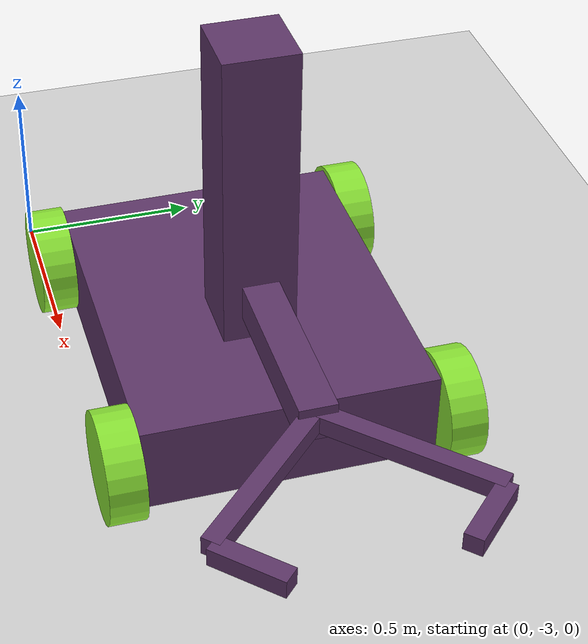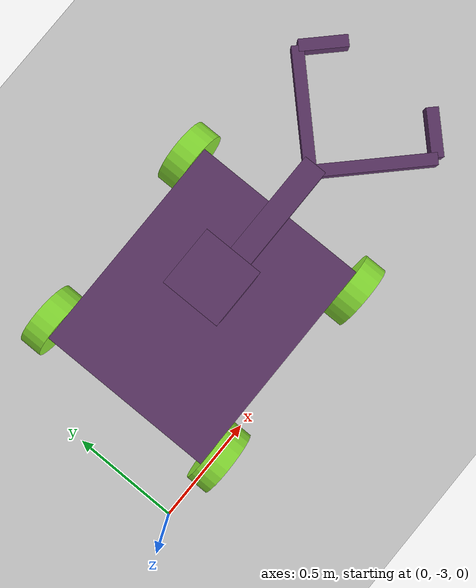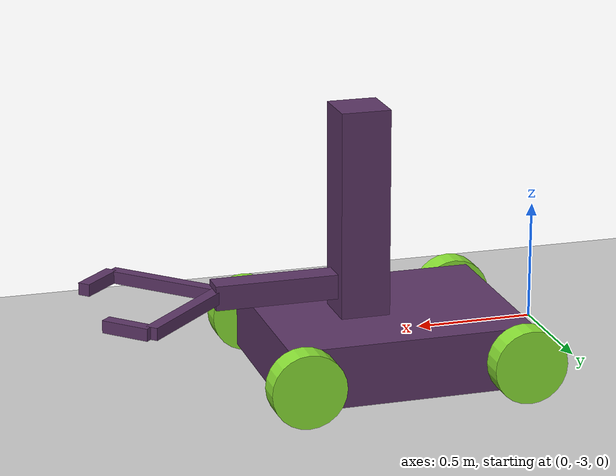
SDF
<sdf version="1.7">
 <world name="default">
  <model name="ground_plane">
   <static>1</static>
   <link name="ground_link">
    <collision name="collision">
     <geometry><plane><normal>0 0 1</normal><size>100 100</size></plane></geometry>
     <surface><friction><ode><mu>100</mu><mu2>50</mu2></ode></friction></surface>
    </collision>
    <visual name="visual">
     <cast_shadows>0</cast_shadows>
     <geometry><plane><normal>0 0 1</normal><size>100 100</size></plane></geometry>
     <material>
      <script><uri>file://media/materials/scripts/gazebo.material</uri><name>Gazebo/Grey</name></script>
     </material>
    </visual>
   </link>
  </model>
  <model name="GripperBot">
   <link name="link_1">
    <inertial>
     <mass>20</mass>
     <inertia>
      <ixx>0.885417</ixx>
      <ixy>0</ixy>
      <ixz>0</ixz>
      <iyy>0.885417</iyy>
      <iyz>0</iyz>
      <izz>1.66667</izz>
     </inertia>
    </inertial>
    <pose>0 -0 0.155 0 -0 0</pose>
    <visual name="visual">
     <geometry><box><size>1 0.8 0.25</size></box></geometry>
     <material>
      <lighting>1</lighting>
      <script><uri>file://media/materials/scripts/gazebo.material</uri><name>Gazebo/Grey</name></script>
      <shader type="pixel"><normal_map>__default__</normal_map></shader>
      <ambient>0.8 0 0 1</ambient>
      <diffuse>0.361 0.208 0.4 1</diffuse>
      <specular>0.961 0.475 0 1</specular>
      <emissive>0 0 0 1</emissive>
     </material>
    </visual>
    <collision name="collision">
     <geometry><box><size>1 0.8 0.25</size></box></geometry>
     <surface>
      <friction>
       <ode><mu>1</mu><mu2>1</mu2><fdir1>0 0 0</fdir1><slip1>0</slip1><slip2>0</slip2></ode>
       <torsional>
        <coefficient>1</coefficient>
        <patch_radius>0</patch_radius>
        <surface_radius>0</surface_radius>
        <use_patch_radius>1</use_patch_radius>
        <ode><slip>0</slip></ode>
       </torsional>
      </friction>
      <bounce><restitution_coefficient>0</restitution_coefficient><threshold>1e+06</threshold></bounce>
      <contact>
       <collide_without_contact>0</collide_without_contact>
       <collide_without_contact_bitmask>1</collide_without_contact_bitmask>
       <collide_bitmask>1</collide_bitmask>
       <ode>
        <soft_cfm>0</soft_cfm>
        <soft_erp>0.2</soft_erp>
        <kp>1e+13</kp>
        <kd>1</kd>
        <max_vel>0.01</max_vel>
        <min_depth>0</min_depth>
       </ode>
       <bullet>
        <split_impulse>1</split_impulse>
        <split_impulse_penetration_threshold>-0.01</split_impulse_penetration_threshold>
        <soft_cfm>0</soft_cfm>
        <soft_erp>0.2</soft_erp>
        <kp>1e+13</kp>
        <kd>1</kd>
       </bullet>
      </contact>
     </surface>
    </collision>
   </link>
   <link name="link_2_clone_1">
    <inertial>
     <mass>0.1</mass>
     <inertia><ixx>0.145833</ixx><ixy>0</ixy><ixz>0</ixz><iyy>0.145833</iyy><iyz>0</iyz><izz>0.125</izz></inertia>
    </inertial>
    <pose>0.45 -0.45 0.15 1.5707 -0 0</pose>
    <visual name="visual">
     <geometry><cylinder><radius>0.15</radius><length>0.1</length></cylinder></geometry>
     <material>
      <lighting>1</lighting>
      <script><uri>file://media/materials/scripts/gazebo.material</uri><name>Gazebo/Grey</name></script>
      <shader type="pixel"><normal_map>__default__</normal_map></shader>
      <ambient>0.541 0.886 0.204 1</ambient>
      <diffuse>0.7 0.7 0.7 1</diffuse>
      <specular>0.01 0.01 0.01 1</specular>
      <emissive>0 0 0 1</emissive>
     </material>
    </visual>
    <collision name="collision">
     <geometry><cylinder><radius>0.15</radius><length>0.1</length></cylinder></geometry>
     <surface>
      <friction>
       <ode><mu>1</mu><mu2>1</mu2><fdir1>0 0 0</fdir1><slip1>0</slip1><slip2>0</slip2></ode>
       <torsional>
        <coefficient>1</coefficient>
        <patch_radius>0</patch_radius>
        <surface_radius>0</surface_radius>
        <use_patch_radius>1</use_patch_radius>
        <ode><slip>0</slip></ode>
       </torsional>
      </friction>
      <bounce><restitution_coefficient>0</restitution_coefficient><threshold>1e+06</threshold></bounce>
      <contact>
       <collide_without_contact>0</collide_without_contact>
       <collide_without_contact_bitmask>1</collide_without_contact_bitmask>
       <collide_bitmask>1</collide_bitmask>
       <ode>
        <soft_cfm>0</soft_cfm>
        <soft_erp>0.2</soft_erp>
        <kp>1e+13</kp>
        <kd>1</kd>
        <max_vel>0.01</max_vel>
        <min_depth>0</min_depth>
       </ode>
       <bullet>
        <split_impulse>1</split_impulse>
        <split_impulse_penetration_threshold>-0.01</split_impulse_penetration_threshold>
        <soft_cfm>0</soft_cfm>
        <soft_erp>0.2</soft_erp>
        <kp>1e+13</kp>
        <kd>1</kd>
       </bullet>
      </contact>
     </surface>
    </collision>
   </link>
   <link name="link_2_clone_1_clone">
    <inertial>
     <mass>0.1</mass>
     <inertia><ixx>0.145833</ixx><ixy>0</ixy><ixz>0</ixz><iyy>0.145833</iyy><iyz>0</iyz><izz>0.125</izz></inertia>
    </inertial>
    <pose>0.45 0.45 0.15 1.5707 -0 0</pose>
    <visual name="visual">
     <geometry><cylinder><radius>0.15</radius><length>0.1</length></cylinder></geometry>
     <material>
      <lighting>1</lighting>
      <script><uri>file://media/materials/scripts/gazebo.material</uri><name>Gazebo/Grey</name></script>
      <shader type="pixel"><normal_map>__default__</normal_map></shader>
      <ambient>0.541 0.886 0.204 1</ambient>
      <diffuse>0.7 0.7 0.7 1</diffuse>
      <specular>0.01 0.01 0.01 1</specular>
      <emissive>0 0 0 1</emissive>
     </material>
    </visual>
    <collision name="collision">
     <geometry><cylinder><radius>0.15</radius><length>0.1</length></cylinder></geometry>
     <surface>
      <friction>
       <ode><mu>1</mu><mu2>1</mu2><fdir1>0 0 0</fdir1><slip1>0</slip1><slip2>0</slip2></ode>
       <torsional>
        <coefficient>1</coefficient>
        <patch_radius>0</patch_radius>
        <surface_radius>0</surface_radius>
        <use_patch_radius>1</use_patch_radius>
        <ode><slip>0</slip></ode>
       </torsional>
      </friction>
      <bounce><restitution_coefficient>0</restitution_coefficient><threshold>1e+06</threshold></bounce>
      <contact>
       <collide_without_contact>0</collide_without_contact>
       <collide_without_contact_bitmask>1</collide_without_contact_bitmask>
       <collide_bitmask>1</collide_bitmask>
       <ode>
        <soft_cfm>0</soft_cfm>
        <soft_erp>0.2</soft_erp>
        <kp>1e+13</kp>
        <kd>1</kd>
        <max_vel>0.01</max_vel>
        <min_depth>0</min_depth>
       </ode>
       <bullet>
        <split_impulse>1</split_impulse>
        <split_impulse_penetration_threshold>-0.01</split_impulse_penetration_threshold>
        <soft_cfm>0</soft_cfm>
        <soft_erp>0.2</soft_erp>
        <kp>1e+13</kp>
        <kd>1</kd>
       </bullet>
      </contact>
     </surface>
    </collision>
   </link>
   <link name="link_2_clone_1_clone_0">
    <inertial>
     <mass>0.1</mass>
     <inertia><ixx>0.145833</ixx><ixy>0</ixy><ixz>0</ixz><iyy>0.145833</iyy><iyz>0</iyz><izz>0.125</izz></inertia>
    </inertial>
    <pose>-0.45 -0.45 0.15 1.5707 -0 0</pose>
    <visual name="visual">
     <geometry><cylinder><radius>0.15</radius><length>0.1</length></cylinder></geometry>
     <material>
      <lighting>1</lighting>
      <script><uri>file://media/materials/scripts/gazebo.material</uri><name>Gazebo/Grey</name></script>
      <shader type="pixel"><normal_map>__default__</normal_map></shader>
      <ambient>0.541 0.886 0.204 1</ambient>
      <diffuse>0.7 0.7 0.7 1</diffuse>
      <specular>0.01 0.01 0.01 1</specular>
      <emissive>0 0 0 1</emissive>
     </material>
    </visual>
    <collision name="collision">
     <geometry><cylinder><radius>0.15</radius><length>0.1</length></cylinder></geometry>
     <surface>
      <friction>
       <ode><mu>1</mu><mu2>1</mu2><fdir1>0 0 0</fdir1><slip1>0</slip1><slip2>0</slip2></ode>
       <torsional>
        <coefficient>1</coefficient>
        <patch_radius>0</patch_radius>
        <surface_radius>0</surface_radius>
        <use_patch_radius>1</use_patch_radius>
        <ode><slip>0</slip></ode>
       </torsional>
      </friction>
      <bounce><restitution_coefficient>0</restitution_coefficient><threshold>1e+06</threshold></bounce>
      <contact>
       <collide_without_contact>0</collide_without_contact>
       <collide_without_contact_bitmask>1</collide_without_contact_bitmask>
       <collide_bitmask>1</collide_bitmask>
       <ode>
        <soft_cfm>0</soft_cfm>
        <soft_erp>0.2</soft_erp>
        <kp>1e+13</kp>
        <kd>1</kd>
        <max_vel>0.01</max_vel>
        <min_depth>0</min_depth>
       </ode>
       <bullet>
        <split_impulse>1</split_impulse>
        <split_impulse_penetration_threshold>-0.01</split_impulse_penetration_threshold>
        <soft_cfm>0</soft_cfm>
        <soft_erp>0.2</soft_erp>
        <kp>1e+13</kp>
        <kd>1</kd>
       </bullet>
      </contact>
     </surface>
    </collision>
   </link>
   <link name="link_2_clone_1_clone_clone">
    <inertial>
     <mass>0.1</mass>
     <inertia><ixx>0.145833</ixx><ixy>0</ixy><ixz>0</ixz><iyy>0.145833</iyy><iyz>0</iyz><izz>0.125</izz></inertia>
    </inertial>
    <pose>-0.45 0.45 0.15 1.5707 -0 0</pose>
    <visual name="visual">
     <geometry><cylinder><radius>0.15</radius><length>0.1</length></cylinder></geometry>
     <material>
      <lighting>1</lighting>
      <script><uri>file://media/materials/scripts/gazebo.material</uri><name>Gazebo/Grey</name></script>
      <shader type="pixel"><normal_map>__default__</normal_map></shader>
      <ambient>0.541 0.886 0.204 1</ambient>
      <diffuse>0.7 0.7 0.7 1</diffuse>
      <specular>0.01 0.01 0.01 1</specular>
      <emissive>0 0 0 1</emissive>
     </material>
    </visual>
    <collision name="collision">
     <geometry><cylinder><radius>0.15</radius><length>0.1</length></cylinder></geometry>
     <surface>
      <friction>
       <ode><mu>1</mu><mu2>1</mu2><fdir1>0 0 0</fdir1><slip1>0</slip1><slip2>0</slip2></ode>
       <torsional>
        <coefficient>1</coefficient>
        <patch_radius>0</patch_radius>
        <surface_radius>0</surface_radius>
        <use_patch_radius>1</use_patch_radius>
        <ode><slip>0</slip></ode>
       </torsional>
      </friction>
      <bounce><restitution_coefficient>0</restitution_coefficient><threshold>1e+06</threshold></bounce>
      <contact>
       <collide_without_contact>0</collide_without_contact>
       <collide_without_contact_bitmask>1</collide_without_contact_bitmask>
       <collide_bitmask>1</collide_bitmask>
       <ode>
        <soft_cfm>0</soft_cfm>
        <soft_erp>0.2</soft_erp>
        <kp>1e+13</kp>
        <kd>1</kd>
        <max_vel>0.01</max_vel>
        <min_depth>0</min_depth>
       </ode>
       <bullet>
        <split_impulse>1</split_impulse>
        <split_impulse_penetration_threshold>-0.01</split_impulse_penetration_threshold>
        <soft_cfm>0</soft_cfm>
        <soft_erp>0.2</soft_erp>
        <kp>1e+13</kp>
        <kd>1</kd>
       </bullet>
      </contact>
     </surface>
    </collision>
   </link>
   <link name="link_3">
    <inertial>
     <mass>0.1</mass>
     <inertia>
      <ixx>0.166667</ixx>
      <ixy>0</ixy>
      <ixz>0</ixz>
      <iyy>0.166667</iyy>
      <iyz>0</iyz>
      <izz>0.166667</izz>
     </inertia>
    </inertial>
    <pose>0.102445 -0.000668 0.620289 0 -0 0</pose>
    <visual name="visual">
     <geometry><box><size>0.2 0.2 1</size></box></geometry>
     <material>
      <lighting>1</lighting>
      <script><uri>file://media/materials/scripts/gazebo.material</uri><name>Gazebo/Grey</name></script>
      <shader type="pixel"><normal_map>__default__</normal_map></shader>
      <ambient>0.361 0.208 0.4 1</ambient>
      <diffuse>0.7 0.7 0.7 1</diffuse>
      <specular>0.01 0.01 0.01 1</specular>
      <emissive>0 0 0 1</emissive>
     </material>
    </visual>
    <collision name="collision">
     <geometry><box><size>0.2 0.2 1</size></box></geometry>
     <surface>
      <friction>
       <ode><mu>1</mu><mu2>1</mu2><fdir1>0 0 0</fdir1><slip1>0</slip1><slip2>0</slip2></ode>
       <torsional>
        <coefficient>1</coefficient>
        <patch_radius>0</patch_radius>
        <surface_radius>0</surface_radius>
        <use_patch_radius>1</use_patch_radius>
        <ode><slip>0</slip></ode>
       </torsional>
      </friction>
      <bounce><restitution_coefficient>0</restitution_coefficient><threshold>1e+06</threshold></bounce>
      <contact>
       <collide_without_contact>0</collide_without_contact>
       <collide_without_contact_bitmask>1</collide_without_contact_bitmask>
       <collide_bitmask>1</collide_bitmask>
       <ode>
        <soft_cfm>0</soft_cfm>
        <soft_erp>0.2</soft_erp>
        <kp>1e+13</kp>
        <kd>1</kd>
        <max_vel>0.01</max_vel>
        <min_depth>0</min_depth>
       </ode>
       <bullet>
        <split_impulse>1</split_impulse>
        <split_impulse_penetration_threshold>-0.01</split_impulse_penetration_threshold>
        <soft_cfm>0</soft_cfm>
        <soft_erp>0.2</soft_erp>
        <kp>1e+13</kp>
        <kd>1</kd>
       </bullet>
      </contact>
     </surface>
    </collision>
   </link>
   <link name="link_4">
    <inertial>
     <mass>0.1</mass>
     <inertia>
      <ixx>0.166667</ixx>
      <ixy>0</ixy>
      <ixz>0</ixz>
      <iyy>0.166667</iyy>
      <iyz>0</iyz>
      <izz>0.166667</izz>
     </inertia>
    </inertial>
    <pose>0.45 0 0.4 0 -0 0</pose>
    <visual name="visual">
     <geometry><box><size>0.5 0.1 0.1</size></box></geometry>
     <material>
      <lighting>1</lighting>
      <script><uri>file://media/materials/scripts/gazebo.material</uri><name>Gazebo/Grey</name></script>
      <shader type="pixel"><normal_map>__default__</normal_map></shader>
      <ambient>0.361 0.208 0.4 1</ambient>
      <diffuse>0.7 0.7 0.7 1</diffuse>
      <specular>0.01 0.01 0.01 1</specular>
      <emissive>0 0 0 1</emissive>
     </material>
    </visual>
    <collision name="collision">
     <geometry><box><size>0.5 0.1 0.1</size></box></geometry>
     <surface>
      <friction>
       <ode><mu>1</mu><mu2>1</mu2><fdir1>0 0 0</fdir1><slip1>0</slip1><slip2>0</slip2></ode>
       <torsional>
        <coefficient>1</coefficient>
        <patch_radius>0</patch_radius>
        <surface_radius>0</surface_radius>
        <use_patch_radius>1</use_patch_radius>
        <ode><slip>0</slip></ode>
       </torsional>
      </friction>
      <bounce><restitution_coefficient>0</restitution_coefficient><threshold>1e+06</threshold></bounce>
      <contact>
       <collide_without_contact>0</collide_without_contact>
       <collide_without_contact_bitmask>1</collide_without_contact_bitmask>
       <collide_bitmask>1</collide_bitmask>
       <ode>
        <soft_cfm>0</soft_cfm>
        <soft_erp>0.2</soft_erp>
        <kp>1e+13</kp>
        <kd>1</kd>
        <max_vel>0.01</max_vel>
        <min_depth>0</min_depth>
       </ode>
       <bullet>
        <split_impulse>1</split_impulse>
        <split_impulse_penetration_threshold>-0.01</split_impulse_penetration_threshold>
        <soft_cfm>0</soft_cfm>
        <soft_erp>0.2</soft_erp>
        <kp>1e+13</kp>
        <kd>1</kd>
       </bullet>
      </contact>
     </surface>
    </collision>
   </link>
   <link name="link_4_clone">
    <inertial>
     <mass>0.1</mass>
     <inertia>
      <ixx>0.166667</ixx>
      <ixy>0</ixy>
      <ixz>0</ixz>
      <iyy>0.166667</iyy>
      <iyz>0</iyz>
      <izz>0.166667</izz>
     </inertia>
    </inertial>
    <pose>0.85 -0.17677 0.4 0 0 -0.78539</pose>
    <visual name="visual">
     <geometry><box><size>0.5 0.05 0.05</size></box></geometry>
     <material>
      <lighting>1</lighting>
      <script><uri>file://media/materials/scripts/gazebo.material</uri><name>Gazebo/Grey</name></script>
      <shader type="pixel"><normal_map>__default__</normal_map></shader>
      <ambient>0.361 0.208 0.4 1</ambient>
      <diffuse>0.7 0.7 0.7 1</diffuse>
      <specular>0.01 0.01 0.01 1</specular>
      <emissive>0 0 0 1</emissive>
     </material>
    </visual>
    <collision name="collision">
     <geometry><box><size>0.5 0.05 0.05</size></box></geometry>
     <surface>
      <friction>
       <ode><mu>1</mu><mu2>1</mu2><fdir1>0 0 0</fdir1><slip1>0</slip1><slip2>0</slip2></ode>
       <torsional>
        <coefficient>1</coefficient>
        <patch_radius>0</patch_radius>
        <surface_radius>0</surface_radius>
        <use_patch_radius>1</use_patch_radius>
        <ode><slip>0</slip></ode>
       </torsional>
      </friction>
      <bounce><restitution_coefficient>0</restitution_coefficient><threshold>1e+06</threshold></bounce>
      <contact>
       <collide_without_contact>0</collide_without_contact>
       <collide_without_contact_bitmask>1</collide_without_contact_bitmask>
       <collide_bitmask>1</collide_bitmask>
       <ode>
        <soft_cfm>0</soft_cfm>
        <soft_erp>0.2</soft_erp>
        <kp>1e+13</kp>
        <kd>1</kd>
        <max_vel>0.01</max_vel>
        <min_depth>0</min_depth>
       </ode>
       <bullet>
        <split_impulse>1</split_impulse>
        <split_impulse_penetration_threshold>-0.01</split_impulse_penetration_threshold>
        <soft_cfm>0</soft_cfm>
        <soft_erp>0.2</soft_erp>
        <kp>1e+13</kp>
        <kd>1</kd>
       </bullet>
      </contact>
     </surface>
    </collision>
   </link>
   <link name="link_4_clone_clone">
    <inertial>
     <mass>0.1</mass>
     <inertia>
      <ixx>0.166667</ixx>
      <ixy>0</ixy>
      <ixz>0</ixz>
      <iyy>0.166667</iyy>
      <iyz>0</iyz>
      <izz>0.166667</izz>
     </inertia>
    </inertial>
    <pose>0.85 0.17677 0.4 0 -0 0.78539</pose>
    <visual name="visual">
     <geometry><box><size>0.5 0.05 0.05</size></box></geometry>
     <material>
      <lighting>1</lighting>
      <script><uri>file://media/materials/scripts/gazebo.material</uri><name>Gazebo/Grey</name></script>
      <shader type="pixel"><normal_map>__default__</normal_map></shader>
      <ambient>0.361 0.208 0.4 1</ambient>
      <diffuse>0.7 0.7 0.7 1</diffuse>
      <specular>0.01 0.01 0.01 1</specular>
      <emissive>0 0 0 1</emissive>
     </material>
    </visual>
    <collision name="collision">
     <geometry><box><size>0.5 0.05 0.05</size></box></geometry>
     <surface>
      <friction>
       <ode><mu>1</mu><mu2>1</mu2><fdir1>0 0 0</fdir1><slip1>0</slip1><slip2>0</slip2></ode>
       <torsional>
        <coefficient>1</coefficient>
        <patch_radius>0</patch_radius>
        <surface_radius>0</surface_radius>
        <use_patch_radius>1</use_patch_radius>
        <ode><slip>0</slip></ode>
       </torsional>
      </friction>
      <bounce><restitution_coefficient>0</restitution_coefficient><threshold>1e+06</threshold></bounce>
      <contact>
       <collide_without_contact>0</collide_without_contact>
       <collide_without_contact_bitmask>1</collide_without_contact_bitmask>
       <collide_bitmask>1</collide_bitmask>
       <ode>
        <soft_cfm>0</soft_cfm>
        <soft_erp>0.2</soft_erp>
        <kp>1e+13</kp>
        <kd>1</kd>
        <max_vel>0.01</max_vel>
        <min_depth>0</min_depth>
       </ode>
       <bullet>
        <split_impulse>1</split_impulse>
        <split_impulse_penetration_threshold>-0.01</split_impulse_penetration_threshold>
        <soft_cfm>0</soft_cfm>
        <soft_erp>0.2</soft_erp>
        <kp>1e+13</kp>
        <kd>1</kd>
       </bullet>
      </contact>
     </surface>
    </collision>
   </link>
   <link name="link_4_clone_clone_0">
    <inertial>
     <mass>0.1</mass>
     <inertia>
      <ixx>0.166667</ixx>
      <ixy>0</ixy>
      <ixz>0</ixz>
      <iyy>0.166667</iyy>
      <iyz>0</iyz>
      <izz>0.166667</izz>
     </inertia>
    </inertial>
    <pose>1.1 0.28 0.4 0 0 -0.78539</pose>
    <visual name="visual">
     <geometry><box><size>0.2 0.05 0.05</size></box></geometry>
     <material>
      <lighting>1</lighting>
      <script><uri>file://media/materials/scripts/gazebo.material</uri><name>Gazebo/Grey</name></script>
      <shader type="pixel"><normal_map>__default__</normal_map></shader>
      <ambient>0.361 0.208 0.4 1</ambient>
      <diffuse>0.7 0.7 0.7 1</diffuse>
      <specular>0.01 0.01 0.01 1</specular>
      <emissive>0 0 0 1</emissive>
     </material>
    </visual>
    <collision name="collision">
     <geometry><box><size>0.2 0.05 0.05</size></box></geometry>
     <surface>
      <friction>
       <ode><mu>1</mu><mu2>1</mu2><fdir1>0 0 0</fdir1><slip1>0</slip1><slip2>0</slip2></ode>
       <torsional>
        <coefficient>1</coefficient>
        <patch_radius>0</patch_radius>
        <surface_radius>0</surface_radius>
        <use_patch_radius>1</use_patch_radius>
        <ode><slip>0</slip></ode>
       </torsional>
      </friction>
      <bounce><restitution_coefficient>0</restitution_coefficient><threshold>1e+06</threshold></bounce>
      <contact>
       <collide_without_contact>0</collide_without_contact>
       <collide_without_contact_bitmask>1</collide_without_contact_bitmask>
       <collide_bitmask>1</collide_bitmask>
       <ode>
        <soft_cfm>0</soft_cfm>
        <soft_erp>0.2</soft_erp>
        <kp>1e+13</kp>
        <kd>1</kd>
        <max_vel>0.01</max_vel>
        <min_depth>0</min_depth>
       </ode>
       <bullet>
        <split_impulse>1</split_impulse>
        <split_impulse_penetration_threshold>-0.01</split_impulse_penetration_threshold>
        <soft_cfm>0</soft_cfm>
        <soft_erp>0.2</soft_erp>
        <kp>1e+13</kp>
        <kd>1</kd>
       </bullet>
      </contact>
     </surface>
    </collision>
   </link>
   <link name="link_4_clone_clone_clone">
    <inertial>
     <mass>0.1</mass>
     <inertia>
      <ixx>0.166667</ixx>
      <ixy>0</ixy>
      <ixz>0</ixz>
      <iyy>0.166667</iyy>
      <iyz>0</iyz>
      <izz>0.166667</izz>
     </inertia>
    </inertial>
    <pose>1.1 -0.28 0.4 0 -0 0.78539</pose>
    <visual name="visual">
     <geometry><box><size>0.2 0.05 0.05</size></box></geometry>
     <material>
      <lighting>1</lighting>
      <script><uri>file://media/materials/scripts/gazebo.material</uri><name>Gazebo/Grey</name></script>
      <shader type="pixel"><normal_map>__default__</normal_map></shader>
      <ambient>0.361 0.208 0.4 1</ambient>
      <diffuse>0.7 0.7 0.7 1</diffuse>
      <specular>0.01 0.01 0.01 1</specular>
      <emissive>0 0 0 1</emissive>
     </material>
    </visual>
    <collision name="collision">
     <geometry><box><size>0.2 0.05 0.05</size></box></geometry>
     <surface>
      <friction>
       <ode><mu>1</mu><mu2>1</mu2><fdir1>0 0 0</fdir1><slip1>0</slip1><slip2>0</slip2></ode>
       <torsional>
        <coefficient>1</coefficient>
        <patch_radius>0</patch_radius>
        <surface_radius>0</surface_radius>
        <use_patch_radius>1</use_patch_radius>
        <ode><slip>0</slip></ode>
       </torsional>
      </friction>
      <bounce><restitution_coefficient>0</restitution_coefficient><threshold>1e+06</threshold></bounce>
      <contact>
       <collide_without_contact>0</collide_without_contact>
       <collide_without_contact_bitmask>1</collide_without_contact_bitmask>
       <collide_bitmask>1</collide_bitmask>
       <ode>
        <soft_cfm>0</soft_cfm>
        <soft_erp>0.2</soft_erp>
        <kp>1e+13</kp>
        <kd>1</kd>
        <max_vel>0.01</max_vel>
        <min_depth>0</min_depth>
       </ode>
       <bullet>
        <split_impulse>1</split_impulse>
        <split_impulse_penetration_threshold>-0.01</split_impulse_penetration_threshold>
        <soft_cfm>0</soft_cfm>
        <soft_erp>0.2</soft_erp>
        <kp>1e+13</kp>
        <kd>1</kd>
       </bullet>
      </contact>
     </surface>
    </collision>
   </link>
   <joint name="link_1_JOINT_0" type="revolute">
    <parent>link_1</parent>
    <child>link_2_clone_1</child>
    <axis>
     <xyz>0 0 1</xyz>
     <limit><lower>-1.79769e+308</lower><upper>1.79769e+308</upper></limit>
     <dynamics>
      <spring_reference>0</spring_reference>
      <spring_stiffness>0</spring_stiffness>
      <damping>0</damping>
     </dynamics>
    </axis>
    <physics>
     <ode><limit><cfm>0</cfm><erp>0.2</erp></limit><suspension><cfm>0</cfm><erp>0.2</erp></suspension></ode>
    </physics>
   </joint>
   <joint name="link_1_JOINT_1" type="revolute">
    <parent>link_1</parent>
    <child>link_2_clone_1_clone_0</child>
    <axis>
     <xyz>0 0 1</xyz>
     <limit><lower>-1.79769e+308</lower><upper>1.79769e+308</upper></limit>
     <dynamics>
      <spring_reference>0</spring_reference>
      <spring_stiffness>0</spring_stiffness>
      <damping>0</damping>
     </dynamics>
    </axis>
    <physics>
     <ode><limit><cfm>0</cfm><erp>0.2</erp></limit><suspension><cfm>0</cfm><erp>0.2</erp></suspension></ode>
    </physics>
   </joint>
   <joint name="link_1_JOINT_2" type="revolute">
    <parent>link_1</parent>
    <child>link_2_clone_1_clone_clone</child>
    <axis>
     <xyz>-0 -0 -1</xyz>
     <limit><lower>-1.79769e+308</lower><upper>1.79769e+308</upper></limit>
     <dynamics>
      <spring_reference>0</spring_reference>
      <spring_stiffness>0</spring_stiffness>
      <damping>0</damping>
     </dynamics>
    </axis>
    <physics>
     <ode><limit><cfm>0</cfm><erp>0.2</erp></limit><suspension><cfm>0</cfm><erp>0.2</erp></suspension></ode>
    </physics>
   </joint>
   <joint name="link_1_JOINT_3" type="revolute">
    <parent>link_1</parent>
    <child>link_2_clone_1_clone</child>
    <axis>
     <xyz>-0 -0 -1</xyz>
     <limit><lower>-1.79769e+308</lower><upper>1.79769e+308</upper></limit>
     <dynamics>
      <spring_reference>0</spring_reference>
      <spring_stiffness>0</spring_stiffness>
      <damping>0</damping>
     </dynamics>
    </axis>
    <physics>
     <ode><limit><cfm>0</cfm><erp>0.2</erp></limit><suspension><cfm>0</cfm><erp>0.2</erp></suspension></ode>
    </physics>
   </joint>
   <joint name="link_1_JOINT_4" type="fixed">
    <parent>link_1</parent>
    <child>link_3</child>
    <physics>
     <ode><limit><cfm>0</cfm><erp>0.2</erp></limit><suspension><cfm>0</cfm><erp>0.2</erp></suspension></ode>
    </physics>
   </joint>
   <joint name="link_3_JOINT_5" type="prismatic">
    <parent>link_3</parent>
    <child>link_4</child>
    <axis>
     <xyz>0 0 1</xyz>
     <limit><lower>0</lower><upper>0.6</upper></limit>
     <dynamics>
      <spring_reference>0</spring_reference>
      <spring_stiffness>0</spring_stiffness>
      <damping>0</damping>
      <friction>0</friction>
     </dynamics>
    </axis>
    <physics>
     <ode><limit><cfm>0</cfm><erp>0.2</erp></limit><suspension><cfm>0</cfm><erp>0.2</erp></suspension></ode>
    </physics>
   </joint>
   <joint name="link_4_JOINT_7" type="revolute">
    <parent>link_4</parent>
    <child>link_4_clone</child>
    <pose>-0.25 0 0 0 -0 0</pose>
    <axis>
     <xyz>0 0 1</xyz>
     <limit><lower>-0.45</lower><upper>0.45</upper></limit>
     <dynamics>
      <spring_reference>0</spring_reference>
      <spring_stiffness>0</spring_stiffness>
      <damping>0</damping>
     </dynamics>
    </axis>
    <physics>
     <ode><limit><cfm>0</cfm><erp>0.2</erp></limit><suspension><cfm>0</cfm><erp>0.2</erp></suspension></ode>
    </physics>
   </joint>
   <joint name="link_4_JOINT_8" type="revolute">
    <parent>link_4</parent>
    <child>link_4_clone_clone</child>
    <pose>-0.25 0 0 0 -0 0</pose>
    <axis>
     <xyz>0 0 1</xyz>
     <limit><lower>-0.45</lower><upper>0.45</upper></limit>
     <dynamics>
      <spring_reference>0</spring_reference>
      <spring_stiffness>0</spring_stiffness>
      <damping>0</damping>
     </dynamics>
    </axis>
    <physics>
     <ode><limit><cfm>0</cfm><erp>0.2</erp></limit><suspension><cfm>0</cfm><erp>0.2</erp></suspension></ode>
    </physics>
   </joint>
   <joint name="link_4_clone_JOINT_10" type="revolute">
    <parent>link_4_clone</parent>
    <child>link_4_clone_clone_clone</child>
    <pose>-0.1 0 0 0 -0 0</pose>
    <axis>
     <xyz>0 0 1</xyz>
     <limit><lower>-0.45</lower><upper>0.45</upper></limit>
     <dynamics>
      <spring_reference>0</spring_reference>
      <spring_stiffness>0</spring_stiffness>
      <damping>0</damping>
     </dynamics>
    </axis>
    <physics>
     <ode><limit><cfm>0</cfm><erp>0.2</erp></limit><suspension><cfm>0</cfm><erp>0.2</erp></suspension></ode>
    </physics>
   </joint>
   <joint name="link_4_clone_clone_JOINT_9" type="revolute">
    <parent>link_4_clone_clone</parent>
    <child>link_4_clone_clone_0</child>
    <pose>-0.1 0 0 0 -0 0</pose>
    <axis>
     <xyz>0 0 1</xyz>
     <limit><lower>-0.45</lower><upper>0.45</upper></limit>
     <dynamics>
      <spring_reference>0</spring_reference>
      <spring_stiffness>0</spring_stiffness>
      <damping>0</damping>
     </dynamics>
    </axis>
    <physics>
     <ode><limit><cfm>0</cfm><erp>0.2</erp></limit><suspension><cfm>0</cfm><erp>0.2</erp></suspension></ode>
    </physics>
   </joint>
   <static>0</static>
   <pose>0.810506 -2.53921 -1e-05 5e-06 3e-06 0.003806</pose>
  </model>
 </world>
</sdf>
